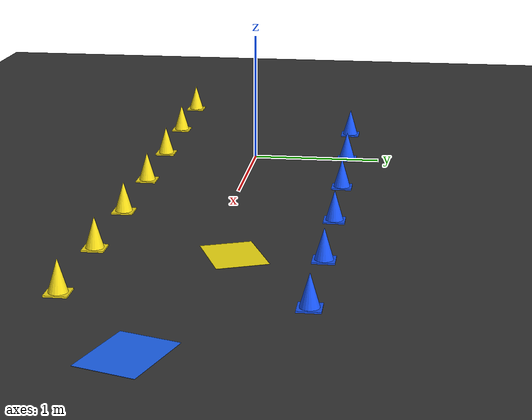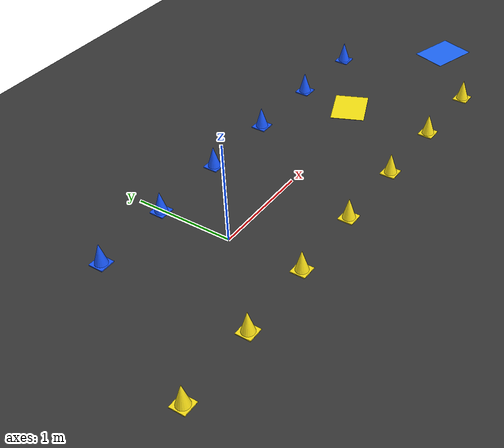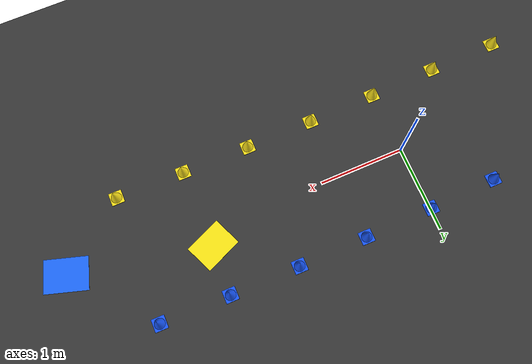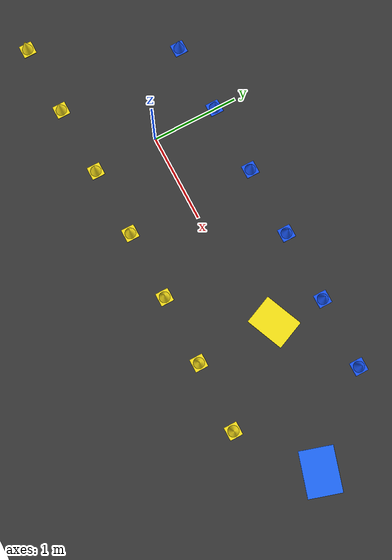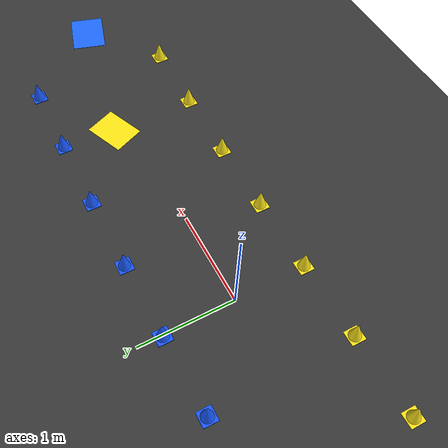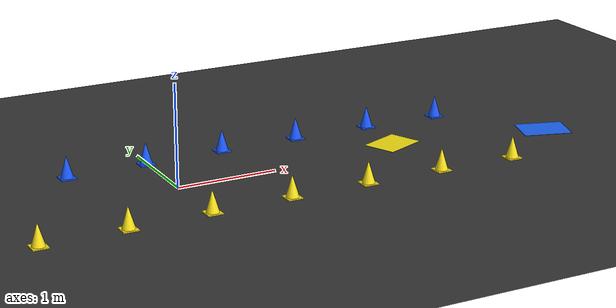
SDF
<sdf version="1.8">
 <world name="track_with_cones">
  <model name="ground_plane">
   <static>true</static>
   <link name="link">
    <collision name="collision">
     <geometry><plane><normal>0 0 1</normal><size>100 100</size></plane></geometry>
     <surface><friction><ode><mu>100</mu><mu2>100</mu2></ode></friction></surface>
    </collision>
    <visual name="visual">
     <geometry><plane><normal>0 0 1</normal><size>100 100</size></plane></geometry>
     <material>
      <ambient>0.22 0.22 0.22 1</ambient>
      <diffuse>0.22 0.22 0.22 1</diffuse>
      <specular>0.05 0.05 0.05 1</specular>
     </material>
    </visual>
   </link>
  </model>
  <model name="noise_poly_yellow_ground_1">
   <static>true</static>
   <pose>2.4 0.18 0.001 0 0 0.4</pose>
   <link name="link">
    <visual name="visual">
     <geometry><box><size>0.45 0.35 0.002</size></box></geometry>
     <material>
      <ambient>0.98 0.88 0.05 1.0</ambient>
      <diffuse>1.00 0.92 0.08 1.0</diffuse>
      <specular>0.1 0.1 0.1 1.0</specular>
     </material>
    </visual>
   </link>
  </model>
  <model name="noise_poly_blue_ground_2">
   <static>true</static>
   <pose>4.0 -0.15 0.001 0 0 -0.3</pose>
   <link name="link">
    <visual name="visual">
     <geometry><box><size>0.50 0.38 0.002</size></box></geometry>
     <material>
      <ambient>0.08 0.35 0.98 1.0</ambient>
      <diffuse>0.12 0.42 1.00 1.0</diffuse>
      <specular>0.1 0.1 0.1 1.0</specular>
     </material>
    </visual>
   </link>
  </model>
  <model name="cone_blue_0">
   <static>true</static>
   <pose>-0.0129 0.7499 0.11 0 0 0</pose>
   <link name="link">
    <visual name="base_visual">
     <pose>0 0 -0.105 0 0 0</pose>
     <geometry><box><size>0.15 0.15 0.01</size></box></geometry>
     <material>
      <ambient>0.05 0.25 0.95 1.0</ambient>
      <diffuse>0.10 0.35 1.00 1.0</diffuse>
      <specular>0.2 0.2 0.2 1.0</specular>
     </material>
    </visual>
    <visual name="cone_visual">
     <geometry><cone><radius>0.065</radius><length>0.22</length></cone></geometry>
     <material>
      <ambient>0.05 0.25 0.95 1.0</ambient>
      <diffuse>0.10 0.35 1.00 1.0</diffuse>
      <specular>0.2 0.2 0.2 1.0</specular>
     </material>
    </visual>
    <collision name="collision">
     <geometry><cylinder><radius>0.065</radius><length>0.22</length></cylinder></geometry>
    </collision>
   </link>
  </model>
  <model name="cone_yellow_0">
   <static>true</static>
   <pose>0.0129 -0.7499 0.11 0 0 0</pose>
   <link name="link">
    <visual name="base_visual">
     <pose>0 0 -0.105 0 0 0</pose>
     <geometry><box><size>0.15 0.15 0.01</size></box></geometry>
     <material>
      <ambient>0.95 0.85 0.05 1.0</ambient>
      <diffuse>1.00 0.90 0.10 1.0</diffuse>
      <specular>0.2 0.2 0.2 1.0</specular>
     </material>
    </visual>
    <visual name="cone_visual">
     <geometry><cone><radius>0.065</radius><length>0.22</length></cone></geometry>
     <material>
      <ambient>0.95 0.85 0.05 1.0</ambient>
      <diffuse>1.00 0.90 0.10 1.0</diffuse>
      <specular>0.2 0.2 0.2 1.0</specular>
     </material>
    </visual>
    <collision name="collision">
     <geometry><cylinder><radius>0.065</radius><length>0.22</length></cylinder></geometry>
    </collision>
   </link>
  </model>
  <model name="cone_blue_1">
   <static>true</static>
   <pose>0.7972 0.7638 0.11 0 0 0</pose>
   <link name="link">
    <visual name="base_visual">
     <pose>0 0 -0.105 0 0 0</pose>
     <geometry><box><size>0.15 0.15 0.01</size></box></geometry>
     <material>
      <ambient>0.05 0.25 0.95 1.0</ambient>
      <diffuse>0.10 0.35 1.00 1.0</diffuse>
      <specular>0.2 0.2 0.2 1.0</specular>
     </material>
    </visual>
    <visual name="cone_visual">
     <geometry><cone><radius>0.065</radius><length>0.22</length></cone></geometry>
     <material>
      <ambient>0.05 0.25 0.95 1.0</ambient>
      <diffuse>0.10 0.35 1.00 1.0</diffuse>
      <specular>0.2 0.2 0.2 1.0</specular>
     </material>
    </visual>
    <collision name="collision">
     <geometry><cylinder><radius>0.065</radius><length>0.22</length></cylinder></geometry>
    </collision>
   </link>
  </model>
  <model name="cone_yellow_1">
   <static>true</static>
   <pose>0.8133 -0.7361 0.11 0 0 0</pose>
   <link name="link">
    <visual name="base_visual">
     <pose>0 0 -0.105 0 0 0</pose>
     <geometry><box><size>0.15 0.15 0.01</size></box></geometry>
     <material>
      <ambient>0.95 0.85 0.05 1.0</ambient>
      <diffuse>1.00 0.90 0.10 1.0</diffuse>
      <specular>0.2 0.2 0.2 1.0</specular>
     </material>
    </visual>
    <visual name="cone_visual">
     <geometry><cone><radius>0.065</radius><length>0.22</length></cone></geometry>
     <material>
      <ambient>0.95 0.85 0.05 1.0</ambient>
      <diffuse>1.00 0.90 0.10 1.0</diffuse>
      <specular>0.2 0.2 0.2 1.0</specular>
     </material>
    </visual>
    <collision name="collision">
     <geometry><cylinder><radius>0.065</radius><length>0.22</length></cylinder></geometry>
    </collision>
   </link>
  </model>
  <model name="cone_blue_2">
   <static>true</static>
   <pose>1.6120 0.7673 0.11 0 0 0</pose>
   <link name="link">
    <visual name="base_visual">
     <pose>0 0 -0.105 0 0 0</pose>
     <geometry><box><size>0.15 0.15 0.01</size></box></geometry>
     <material>
      <ambient>0.05 0.25 0.95 1.0</ambient>
      <diffuse>0.10 0.35 1.00 1.0</diffuse>
      <specular>0.2 0.2 0.2 1.0</specular>
     </material>
    </visual>
    <visual name="cone_visual">
     <geometry><cone><radius>0.065</radius><length>0.22</length></cone></geometry>
     <material>
      <ambient>0.05 0.25 0.95 1.0</ambient>
      <diffuse>0.10 0.35 1.00 1.0</diffuse>
      <specular>0.2 0.2 0.2 1.0</specular>
     </material>
    </visual>
    <collision name="collision">
     <geometry><cylinder><radius>0.065</radius><length>0.22</length></cylinder></geometry>
    </collision>
   </link>
  </model>
  <model name="cone_yellow_2">
   <static>true</static>
   <pose>1.6092 -0.7327 0.11 0 0 0</pose>
   <link name="link">
    <visual name="base_visual">
     <pose>0 0 -0.105 0 0 0</pose>
     <geometry><box><size>0.15 0.15 0.01</size></box></geometry>
     <material>
      <ambient>0.95 0.85 0.05 1.0</ambient>
      <diffuse>1.00 0.90 0.10 1.0</diffuse>
      <specular>0.2 0.2 0.2 1.0</specular>
     </material>
    </visual>
    <visual name="cone_visual">
     <geometry><cone><radius>0.065</radius><length>0.22</length></cone></geometry>
     <material>
      <ambient>0.95 0.85 0.05 1.0</ambient>
      <diffuse>1.00 0.90 0.10 1.0</diffuse>
      <specular>0.2 0.2 0.2 1.0</specular>
     </material>
    </visual>
    <collision name="collision">
     <geometry><cylinder><radius>0.065</radius><length>0.22</length></cylinder></geometry>
    </collision>
   </link>
  </model>
  <model name="cone_blue_3">
   <static>true</static>
   <pose>2.4265 0.7608 0.11 0 0 0</pose>
   <link name="link">
    <visual name="base_visual">
     <pose>0 0 -0.105 0 0 0</pose>
     <geometry><box><size>0.15 0.15 0.01</size></box></geometry>
     <material>
      <ambient>0.05 0.25 0.95 1.0</ambient>
      <diffuse>0.10 0.35 1.00 1.0</diffuse>
      <specular>0.2 0.2 0.2 1.0</specular>
     </material>
    </visual>
    <visual name="cone_visual">
     <geometry><cone><radius>0.065</radius><length>0.22</length></cone></geometry>
     <material>
      <ambient>0.05 0.25 0.95 1.0</ambient>
      <diffuse>0.10 0.35 1.00 1.0</diffuse>
      <specular>0.2 0.2 0.2 1.0</specular>
     </material>
    </visual>
    <collision name="collision">
     <geometry><cylinder><radius>0.065</radius><length>0.22</length></cylinder></geometry>
    </collision>
   </link>
  </model>
  <model name="cone_yellow_3">
   <static>true</static>
   <pose>2.4053 -0.7391 0.11 0 0 0</pose>
   <link name="link">
    <visual name="base_visual">
     <pose>0 0 -0.105 0 0 0</pose>
     <geometry><box><size>0.15 0.15 0.01</size></box></geometry>
     <material>
      <ambient>0.95 0.85 0.05 1.0</ambient>
      <diffuse>1.00 0.90 0.10 1.0</diffuse>
      <specular>0.2 0.2 0.2 1.0</specular>
     </material>
    </visual>
    <visual name="cone_visual">
     <geometry><cone><radius>0.065</radius><length>0.22</length></cone></geometry>
     <material>
      <ambient>0.95 0.85 0.05 1.0</ambient>
      <diffuse>1.00 0.90 0.10 1.0</diffuse>
      <specular>0.2 0.2 0.2 1.0</specular>
     </material>
    </visual>
    <collision name="collision">
     <geometry><cylinder><radius>0.065</radius><length>0.22</length></cylinder></geometry>
    </collision>
   </link>
  </model>
  <model name="cone_blue_4">
   <static>true</static>
   <pose>3.2384 0.7444 0.11 0 0 0</pose>
   <link name="link">
    <visual name="base_visual">
     <pose>0 0 -0.105 0 0 0</pose>
     <geometry><box><size>0.15 0.15 0.01</size></box></geometry>
     <material>
      <ambient>0.05 0.25 0.95 1.0</ambient>
      <diffuse>0.10 0.35 1.00 1.0</diffuse>
      <specular>0.2 0.2 0.2 1.0</specular>
     </material>
    </visual>
    <visual name="cone_visual">
     <geometry><cone><radius>0.065</radius><length>0.22</length></cone></geometry>
     <material>
      <ambient>0.05 0.25 0.95 1.0</ambient>
      <diffuse>0.10 0.35 1.00 1.0</diffuse>
      <specular>0.2 0.2 0.2 1.0</specular>
     </material>
    </visual>
    <collision name="collision">
     <geometry><cylinder><radius>0.065</radius><length>0.22</length></cylinder></geometry>
    </collision>
   </link>
  </model>
  <model name="cone_yellow_4">
   <static>true</static>
   <pose>3.2038 -0.7552 0.11 0 0 0</pose>
   <link name="link">
    <visual name="base_visual">
     <pose>0 0 -0.105 0 0 0</pose>
     <geometry><box><size>0.15 0.15 0.01</size></box></geometry>
     <material>
      <ambient>0.95 0.85 0.05 1.0</ambient>
      <diffuse>1.00 0.90 0.10 1.0</diffuse>
      <specular>0.2 0.2 0.2 1.0</specular>
     </material>
    </visual>
    <visual name="cone_visual">
     <geometry><cone><radius>0.065</radius><length>0.22</length></cone></geometry>
     <material>
      <ambient>0.95 0.85 0.05 1.0</ambient>
      <diffuse>1.00 0.90 0.10 1.0</diffuse>
      <specular>0.2 0.2 0.2 1.0</specular>
     </material>
    </visual>
    <collision name="collision">
     <geometry><cylinder><radius>0.065</radius><length>0.22</length></cylinder></geometry>
    </collision>
   </link>
  </model>
  <model name="cone_yellow_105">
   <static>true</static>
   <pose>-1.6077 -0.7862 0.11 0 0 0</pose>
   <link name="link">
    <visual name="base_visual">
     <pose>0 0 -0.105 0 0 0</pose>
     <geometry><box><size>0.15 0.15 0.01</size></box></geometry>
     <material>
      <ambient>0.95 0.85 0.05 1.0</ambient>
      <diffuse>1.00 0.90 0.10 1.0</diffuse>
      <specular>0.2 0.2 0.2 1.0</specular>
     </material>
    </visual>
    <visual name="cone_visual">
     <geometry><cone><radius>0.065</radius><length>0.22</length></cone></geometry>
     <material>
      <ambient>0.95 0.85 0.05 1.0</ambient>
      <diffuse>1.00 0.90 0.10 1.0</diffuse>
      <specular>0.2 0.2 0.2 1.0</specular>
     </material>
    </visual>
    <collision name="collision">
     <geometry><cylinder><radius>0.065</radius><length>0.22</length></cylinder></geometry>
    </collision>
   </link>
  </model>
  <model name="cone_blue_106">
   <static>true</static>
   <pose>-0.8186 0.7282 0.11 0 0 0</pose>
   <link name="link">
    <visual name="base_visual">
     <pose>0 0 -0.105 0 0 0</pose>
     <geometry><box><size>0.15 0.15 0.01</size></box></geometry>
     <material>
      <ambient>0.05 0.25 0.95 1.0</ambient>
      <diffuse>0.10 0.35 1.00 1.0</diffuse>
      <specular>0.2 0.2 0.2 1.0</specular>
     </material>
    </visual>
    <visual name="cone_visual">
     <geometry><cone><radius>0.065</radius><length>0.22</length></cone></geometry>
     <material>
      <ambient>0.05 0.25 0.95 1.0</ambient>
      <diffuse>0.10 0.35 1.00 1.0</diffuse>
      <specular>0.2 0.2 0.2 1.0</specular>
     </material>
    </visual>
    <collision name="collision">
     <geometry><cylinder><radius>0.065</radius><length>0.22</length></cylinder></geometry>
    </collision>
   </link>
  </model>
  <model name="cone_yellow_106">
   <static>true</static>
   <pose>-0.7916 -0.7716 0.11 0 0 0</pose>
   <link name="link">
    <visual name="base_visual">
     <pose>0 0 -0.105 0 0 0</pose>
     <geometry><box><size>0.15 0.15 0.01</size></box></geometry>
     <material>
      <ambient>0.95 0.85 0.05 1.0</ambient>
      <diffuse>1.00 0.90 0.10 1.0</diffuse>
      <specular>0.2 0.2 0.2 1.0</specular>
     </material>
    </visual>
    <visual name="cone_visual">
     <geometry><cone><radius>0.065</radius><length>0.22</length></cone></geometry>
     <material>
      <ambient>0.95 0.85 0.05 1.0</ambient>
      <diffuse>1.00 0.90 0.10 1.0</diffuse>
      <specular>0.2 0.2 0.2 1.0</specular>
     </material>
    </visual>
    <collision name="collision">
     <geometry><cylinder><radius>0.065</radius><length>0.22</length></cylinder></geometry>
    </collision>
   </link>
  </model>
 </world>
</sdf>
